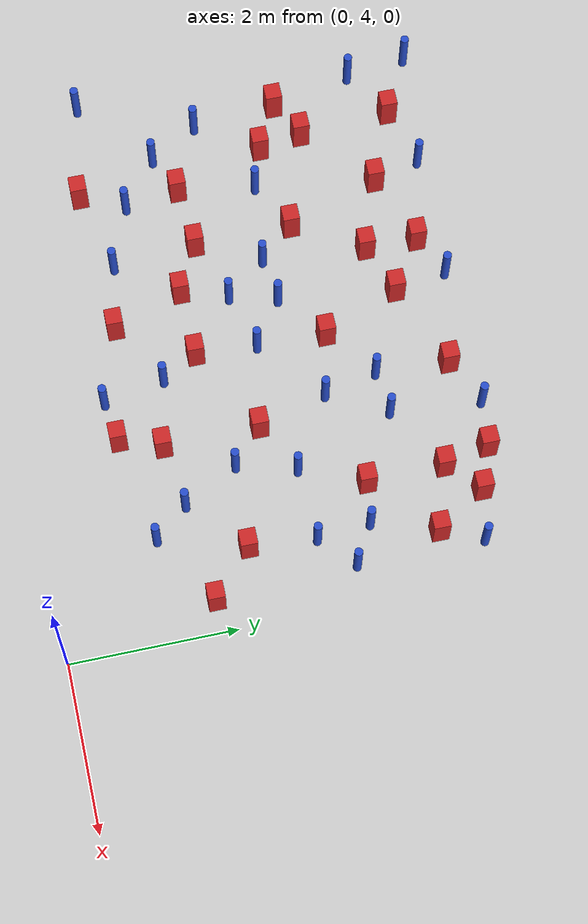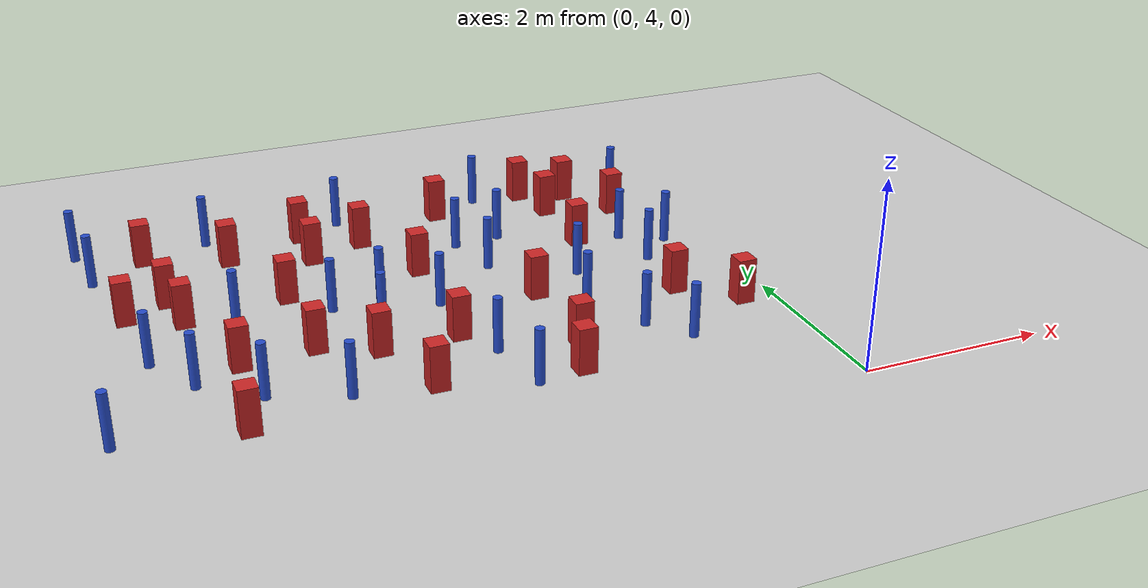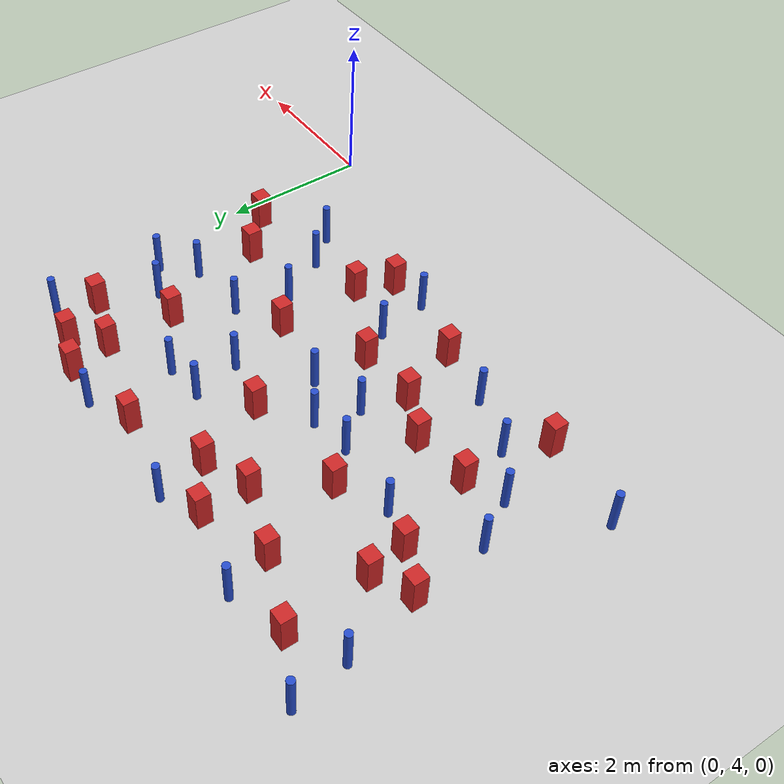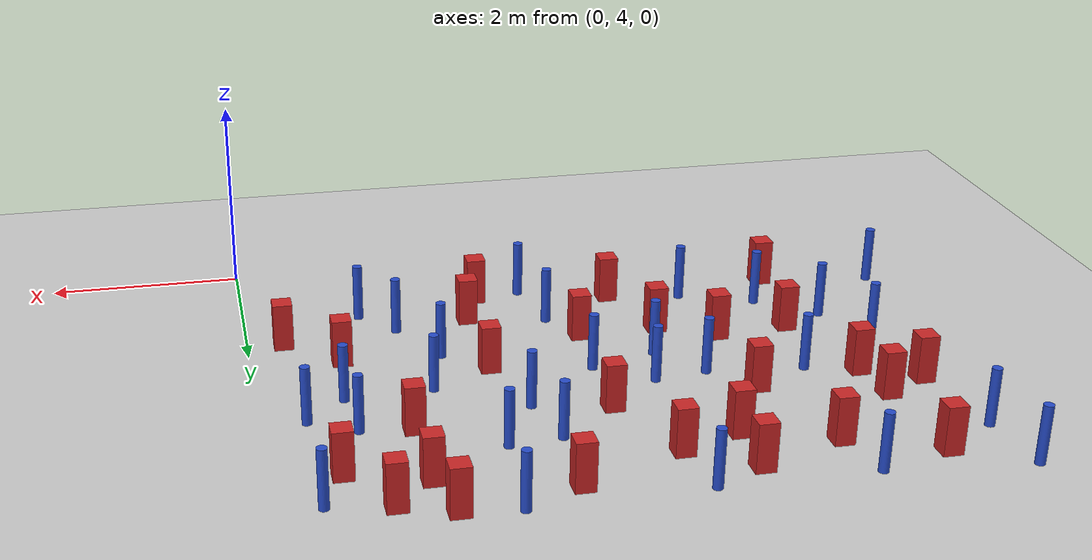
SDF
<sdf version="1.6">
 <world name="default">
  <model name="ground_plane">
   <static>1</static>
   <link name="link">
    <collision name="collision">
     <geometry><plane><normal>0 0 1</normal><size>100 100</size></plane></geometry>
     <surface><friction><ode><mu>100</mu><mu2>50</mu2></ode></friction></surface>
    </collision>
    <visual name="visual">
     <cast_shadows>0</cast_shadows>
     <geometry><plane><normal>0 0 1</normal><size>100 100</size></plane></geometry>
     <material>
      <ambient>1.0 1.0 1.0 1.0</ambient>
      <diffuse>0.8 0.8 0.8 1.0</diffuse>
      <specular>0.01 0.01 0.01 1.000000</specular>
     </material>
    </visual>
   </link>
  </model>
  <model name="pole_obstacle0">
   <static>true</static>
   <pose>-2.74047596833 8.22016565613 7.38925637345e-09 -8.47170692793e-08 1.24976764408e-08 -1.74513093041e-07</pose>
   <link name="link">
    <pose>0 0 0.3 0 -0 0</pose>
    <inertial>
     <mass>1</mass>
     <inertia><ixx>0.145833</ixx><ixy>0</ixy><ixz>0</ixz><iyy>0.145833</iyy><iyz>0</iyz><izz>0.125</izz></inertia>
    </inertial>
    <collision name="collision">
     <geometry><cylinder><radius>0.05</radius><length>.6</length></cylinder></geometry>
    </collision>
    <visual name="visual">
     <geometry><cylinder><radius>0.05</radius><length>.6</length></cylinder></geometry>
     <material>
      <script><name>Gazebo/Blue</name><uri>file://media/materials/scripts/gazebo.material</uri></script>
     </material>
    </visual>
   </link>
  </model>
  <model name="square_post_obstacle8">
   <static>true</static>
   <pose>-6.50042134347 7.75709684066 1.91545236811e-07 -7.35059704564e-06 1.12565212e-07 2.39332434364e-05</pose>
   <link name="link">
    <pose>0 0 0.25 0 -0 0</pose>
    <inertial>
     <mass>100</mass>
     <inertia>
      <ixx>0.166667</ixx>
      <ixy>0</ixy>
      <ixz>0</ixz>
      <iyy>0.166667</iyy>
      <iyz>0</iyz>
      <izz>0.166667</izz>
     </inertia>
    </inertial>
    <collision name="collision"><geometry><box><size>.2 .2 .5</size></box></geometry></collision>
    <visual name="visual">
     <geometry><box><size>.2 .2 .5</size></box></geometry>
     <material>
      <script><name>Gazebo/Red</name><uri>file://media/materials/scripts/gazebo.material</uri></script>
     </material>
    </visual>
   </link>
  </model>
  <model name="pole_obstacle15">
   <static>true</static>
   <pose>-3.9103735772 7.27797868932 7.38925637345e-09 -8.47170692798e-08 1.24976765033e-08 -1.74513093019e-07</pose>
   <link name="link">
    <pose>0 0 0.3 0 -0 0</pose>
    <inertial>
     <mass>1</mass>
     <inertia><ixx>0.145833</ixx><ixy>0</ixy><ixz>0</ixz><iyy>0.145833</iyy><iyz>0</iyz><izz>0.125</izz></inertia>
    </inertial>
    <collision name="collision">
     <geometry><cylinder><radius>0.05</radius><length>.6</length></cylinder></geometry>
    </collision>
    <visual name="visual">
     <geometry><cylinder><radius>0.05</radius><length>.6</length></cylinder></geometry>
     <material>
      <script><name>Gazebo/Blue</name><uri>file://media/materials/scripts/gazebo.material</uri></script>
     </material>
    </visual>
   </link>
  </model>
  <model name="square_post_obstacle26">
   <static>true</static>
   <pose>-2.52311962346 5.06204377096 1.91545236811e-07 -7.35059704564e-06 1.12565212e-07 2.39332434364e-05</pose>
   <link name="link">
    <pose>0 0 0.25 0 -0 0</pose>
    <inertial>
     <mass>100</mass>
     <inertia>
      <ixx>0.166667</ixx>
      <ixy>0</ixy>
      <ixz>0</ixz>
      <iyy>0.166667</iyy>
      <iyz>0</iyz>
      <izz>0.166667</izz>
     </inertia>
    </inertial>
    <collision name="collision"><geometry><box><size>.2 .2 .5</size></box></geometry></collision>
    <visual name="visual">
     <geometry><box><size>.2 .2 .5</size></box></geometry>
     <material>
      <script><name>Gazebo/Red</name><uri>file://media/materials/scripts/gazebo.material</uri></script>
     </material>
    </visual>
   </link>
  </model>
  <model name="square_post_obstacle32">
   <static>true</static>
   <pose>-5.23135822842 8.76338103771 1.91545236811e-07 -7.35059704564e-06 1.12565212e-07 2.39332434364e-05</pose>
   <link name="link">
    <pose>0 0 0.25 0 -0 0</pose>
    <inertial>
     <mass>100</mass>
     <inertia>
      <ixx>0.166667</ixx>
      <ixy>0</ixy>
      <ixz>0</ixz>
      <iyy>0.166667</iyy>
      <iyz>0</iyz>
      <izz>0.166667</izz>
     </inertia>
    </inertial>
    <collision name="collision"><geometry><box><size>.2 .2 .5</size></box></geometry></collision>
    <visual name="visual">
     <geometry><box><size>.2 .2 .5</size></box></geometry>
     <material>
      <script><name>Gazebo/Red</name><uri>file://media/materials/scripts/gazebo.material</uri></script>
     </material>
    </visual>
   </link>
  </model>
  <model name="pole_obstacle29">
   <static>true</static>
   <pose>-4.73370630405 5.41766139829 7.38925637345e-09 -8.47170692796e-08 1.24976764786e-08 -1.74513093032e-07</pose>
   <link name="link">
    <pose>0 0 0.3 0 -0 0</pose>
    <inertial>
     <mass>1</mass>
     <inertia><ixx>0.145833</ixx><ixy>0</ixy><ixz>0</ixz><iyy>0.145833</iyy><iyz>0</iyz><izz>0.125</izz></inertia>
    </inertial>
    <collision name="collision">
     <geometry><cylinder><radius>0.05</radius><length>.6</length></cylinder></geometry>
    </collision>
    <visual name="visual">
     <geometry><cylinder><radius>0.05</radius><length>.6</length></cylinder></geometry>
     <material>
      <script><name>Gazebo/Blue</name><uri>file://media/materials/scripts/gazebo.material</uri></script>
     </material>
    </visual>
   </link>
  </model>
  <model name="pole_obstacle31">
   <static>true</static>
   <pose>-0.447804162188 7.48627772428 7.38925637345e-09 -8.471706928e-08 1.24976765079e-08 -1.74513093015e-07</pose>
   <link name="link">
    <pose>0 0 0.3 0 -0 0</pose>
    <inertial>
     <mass>1</mass>
     <inertia><ixx>0.145833</ixx><ixy>0</ixy><ixz>0</ixz><iyy>0.145833</iyy><iyz>0</iyz><izz>0.125</izz></inertia>
    </inertial>
    <collision name="collision">
     <geometry><cylinder><radius>0.05</radius><length>.6</length></cylinder></geometry>
    </collision>
    <visual name="visual">
     <geometry><cylinder><radius>0.05</radius><length>.6</length></cylinder></geometry>
     <material>
      <script><name>Gazebo/Blue</name><uri>file://media/materials/scripts/gazebo.material</uri></script>
     </material>
    </visual>
   </link>
  </model>
  <model name="pole_obstacle35">
   <static>true</static>
   <pose>-6.41034922686 6.73731167254 7.38925637345e-09 -8.47170692796e-08 1.24976764786e-08 -1.74513093032e-07</pose>
   <link name="link">
    <pose>0 0 0.3 0 -0 0</pose>
    <inertial>
     <mass>1</mass>
     <inertia><ixx>0.145833</ixx><ixy>0</ixy><ixz>0</ixz><iyy>0.145833</iyy><iyz>0</iyz><izz>0.125</izz></inertia>
    </inertial>
    <collision name="collision">
     <geometry><cylinder><radius>0.05</radius><length>.6</length></cylinder></geometry>
    </collision>
    <visual name="visual">
     <geometry><cylinder><radius>0.05</radius><length>.6</length></cylinder></geometry>
     <material>
      <script><name>Gazebo/Blue</name><uri>file://media/materials/scripts/gazebo.material</uri></script>
     </material>
    </visual>
   </link>
  </model>
  <model name="pole_obstacle41">
   <static>true</static>
   <pose>-6.71391786176 8.75395670122 7.38925637345e-09 -8.471706928e-08 1.24976765081e-08 -1.74513093015e-07</pose>
   <link name="link">
    <pose>0 0 0.3 0 -0 0</pose>
    <inertial>
     <mass>1</mass>
     <inertia><ixx>0.145833</ixx><ixy>0</ixy><ixz>0</ixz><iyy>0.145833</iyy><iyz>0</iyz><izz>0.125</izz></inertia>
    </inertial>
    <collision name="collision">
     <geometry><cylinder><radius>0.05</radius><length>.6</length></cylinder></geometry>
    </collision>
    <visual name="visual">
     <geometry><cylinder><radius>0.05</radius><length>.6</length></cylinder></geometry>
     <material>
      <script><name>Gazebo/Blue</name><uri>file://media/materials/scripts/gazebo.material</uri></script>
     </material>
    </visual>
   </link>
  </model>
  <model name="pole_obstacle48">
   <static>true</static>
   <pose>-3.1614789813 5.72908168423 7.38925637345e-09 -8.47170692798e-08 1.24976765033e-08 -1.74513093019e-07</pose>
   <link name="link">
    <pose>0 0 0.3 0 -0 0</pose>
    <inertial>
     <mass>1</mass>
     <inertia><ixx>0.145833</ixx><ixy>0</ixy><ixz>0</ixz><iyy>0.145833</iyy><iyz>0</iyz><izz>0.125</izz></inertia>
    </inertial>
    <collision name="collision">
     <geometry><cylinder><radius>0.05</radius><length>.6</length></cylinder></geometry>
    </collision>
    <visual name="visual">
     <geometry><cylinder><radius>0.05</radius><length>.6</length></cylinder></geometry>
     <material>
      <script><name>Gazebo/Blue</name><uri>file://media/materials/scripts/gazebo.material</uri></script>
     </material>
    </visual>
   </link>
  </model>
  <model name="pole_obstacle49">
   <static>true</static>
   <pose>-1.56277596051 5.68180230896 7.38925637345e-09 -8.47170692799e-08 1.24976765033e-08 -1.74513093018e-07</pose>
   <link name="link">
    <pose>0 0 0.3 0 -0 0</pose>
    <inertial>
     <mass>1</mass>
     <inertia><ixx>0.145833</ixx><ixy>0</ixy><ixz>0</ixz><iyy>0.145833</iyy><iyz>0</iyz><izz>0.125</izz></inertia>
    </inertial>
    <collision name="collision">
     <geometry><cylinder><radius>0.05</radius><length>.6</length></cylinder></geometry>
    </collision>
    <visual name="visual">
     <geometry><cylinder><radius>0.05</radius><length>.6</length></cylinder></geometry>
     <material>
      <script><name>Gazebo/Blue</name><uri>file://media/materials/scripts/gazebo.material</uri></script>
     </material>
    </visual>
   </link>
  </model>
  <model name="square_post_obstacle56">
   <static>true</static>
   <pose>-0.372940608553 5.80518816378 1.91545236811e-07 -7.35059704564e-06 1.12565212e-07 2.39332434364e-05</pose>
   <link name="link">
    <pose>0 0 0.25 0 -0 0</pose>
    <inertial>
     <mass>100</mass>
     <inertia>
      <ixx>0.166667</ixx>
      <ixy>0</ixy>
      <ixz>0</ixz>
      <iyy>0.166667</iyy>
      <iyz>0</iyz>
      <izz>0.166667</izz>
     </inertia>
    </inertial>
    <collision name="collision"><geometry><box><size>.2 .2 .5</size></box></geometry></collision>
    <visual name="visual">
     <geometry><box><size>.2 .2 .5</size></box></geometry>
     <material>
      <script><name>Gazebo/Red</name><uri>file://media/materials/scripts/gazebo.material</uri></script>
     </material>
    </visual>
   </link>
  </model>
  <model name="square_post_obstacle57">
   <static>true</static>
   <pose>-2.69815519711 9.10023518948 1.91545236811e-07 -7.35059704564e-06 1.12565212e-07 2.39332434364e-05</pose>
   <link name="link">
    <pose>0 0 0.25 0 -0 0</pose>
    <inertial>
     <mass>100</mass>
     <inertia>
      <ixx>0.166667</ixx>
      <ixy>0</ixy>
      <ixz>0</ixz>
      <iyy>0.166667</iyy>
      <iyz>0</iyz>
      <izz>0.166667</izz>
     </inertia>
    </inertial>
    <collision name="collision"><geometry><box><size>.2 .2 .5</size></box></geometry></collision>
    <visual name="visual">
     <geometry><box><size>.2 .2 .5</size></box></geometry>
     <material>
      <script><name>Gazebo/Red</name><uri>file://media/materials/scripts/gazebo.material</uri></script>
     </material>
    </visual>
   </link>
  </model>
  <model name="square_post_obstacle59">
   <static>true</static>
   <pose>-0.918948018108 6.29497373474 1.91545236811e-07 -7.35059704564e-06 1.12565212e-07 2.39332434364e-05</pose>
   <link name="link">
    <pose>0 0 0.25 0 -0 0</pose>
    <inertial>
     <mass>100</mass>
     <inertia>
      <ixx>0.166667</ixx>
      <ixy>0</ixy>
      <ixz>0</ixz>
      <iyy>0.166667</iyy>
      <iyz>0</iyz>
      <izz>0.166667</izz>
     </inertia>
    </inertial>
    <collision name="collision"><geometry><box><size>.2 .2 .5</size></box></geometry></collision>
    <visual name="visual">
     <geometry><box><size>.2 .2 .5</size></box></geometry>
     <material>
      <script><name>Gazebo/Red</name><uri>file://media/materials/scripts/gazebo.material</uri></script>
     </material>
    </visual>
   </link>
  </model>
  <model name="pole_obstacle59">
   <static>true</static>
   <pose>-6.95492985248 5.35925655726 7.38925637345e-09 -8.47170692796e-08 1.24976764786e-08 -1.74513093032e-07</pose>
   <link name="link">
    <pose>0 0 0.3 0 -0 0</pose>
    <inertial>
     <mass>1</mass>
     <inertia><ixx>0.145833</ixx><ixy>0</ixy><ixz>0</ixz><iyy>0.145833</iyy><iyz>0</iyz><izz>0.125</izz></inertia>
    </inertial>
    <collision name="collision">
     <geometry><cylinder><radius>0.05</radius><length>.6</length></cylinder></geometry>
    </collision>
    <visual name="visual">
     <geometry><cylinder><radius>0.05</radius><length>.6</length></cylinder></geometry>
     <material>
      <script><name>Gazebo/Blue</name><uri>file://media/materials/scripts/gazebo.material</uri></script>
     </material>
    </visual>
   </link>
  </model>
  <model name="pole_obstacle72">
   <static>true</static>
   <pose>-2.21505190173 8.27574011707 7.38925637345e-09 -8.47170692793e-08 1.24976764408e-08 -1.74513093041e-07</pose>
   <link name="link">
    <pose>0 0 0.3 0 -0 0</pose>
    <inertial>
     <mass>1</mass>
     <inertia><ixx>0.145833</ixx><ixy>0</ixy><ixz>0</ixz><iyy>0.145833</iyy><iyz>0</iyz><izz>0.125</izz></inertia>
    </inertial>
    <collision name="collision">
     <geometry><cylinder><radius>0.05</radius><length>.6</length></cylinder></geometry>
    </collision>
    <visual name="visual">
     <geometry><cylinder><radius>0.05</radius><length>.6</length></cylinder></geometry>
     <material>
      <script><name>Gazebo/Blue</name><uri>file://media/materials/scripts/gazebo.material</uri></script>
     </material>
    </visual>
   </link>
  </model>
  <model name="pole_obstacle73">
   <static>true</static>
   <pose>-0.845746992816 7.10002834338 7.38925637345e-09 -8.471706928e-08 1.24976765086e-08 -1.74513093015e-07</pose>
   <link name="link">
    <pose>0 0 0.3 0 -0 0</pose>
    <inertial>
     <mass>1</mass>
     <inertia><ixx>0.145833</ixx><ixy>0</ixy><ixz>0</ixz><iyy>0.145833</iyy><iyz>0</iyz><izz>0.125</izz></inertia>
    </inertial>
    <collision name="collision">
     <geometry><cylinder><radius>0.05</radius><length>.6</length></cylinder></geometry>
    </collision>
    <visual name="visual">
     <geometry><cylinder><radius>0.05</radius><length>.6</length></cylinder></geometry>
     <material>
      <script><name>Gazebo/Blue</name><uri>file://media/materials/scripts/gazebo.material</uri></script>
     </material>
    </visual>
   </link>
  </model>
  <model name="pole_obstacle76">
   <static>true</static>
   <pose>-4.45694245112 7.20230404313 7.38925637345e-09 -8.47170692796e-08 1.24976764786e-08 -1.74513093032e-07</pose>
   <link name="link">
    <pose>0 0 0.3 0 -0 0</pose>
    <inertial>
     <mass>1</mass>
     <inertia><ixx>0.145833</ixx><ixy>0</ixy><ixz>0</ixz><iyy>0.145833</iyy><iyz>0</iyz><izz>0.125</izz></inertia>
    </inertial>
    <collision name="collision">
     <geometry><cylinder><radius>0.05</radius><length>.6</length></cylinder></geometry>
    </collision>
    <visual name="visual">
     <geometry><cylinder><radius>0.05</radius><length>.6</length></cylinder></geometry>
     <material>
      <script><name>Gazebo/Blue</name><uri>file://media/materials/scripts/gazebo.material</uri></script>
     </material>
    </visual>
   </link>
  </model>
  <model name="square_post_obstacle83">
   <static>true</static>
   <pose>-1.41263466587 7.8131366715 1.91545236811e-07 -7.35059704564e-06 1.12565212e-07 2.39332434364e-05</pose>
   <link name="link">
    <pose>0 0 0.25 0 -0 0</pose>
    <inertial>
     <mass>100</mass>
     <inertia>
      <ixx>0.166667</ixx>
      <ixy>0</ixy>
      <ixz>0</ixz>
      <iyy>0.166667</iyy>
      <iyz>0</iyz>
      <izz>0.166667</izz>
     </inertia>
    </inertial>
    <collision name="collision"><geometry><box><size>.2 .2 .5</size></box></geometry></collision>
    <visual name="visual">
     <geometry><box><size>.2 .2 .5</size></box></geometry>
     <material>
      <script><name>Gazebo/Red</name><uri>file://media/materials/scripts/gazebo.material</uri></script>
     </material>
    </visual>
   </link>
  </model>
  <model name="pole_obstacle96">
   <static>true</static>
   <pose>-6.81792147704 9.49633468451 7.38925637345e-09 -8.471706928e-08 1.24976765081e-08 -1.74513093015e-07</pose>
   <link name="link">
    <pose>0 0 0.3 0 -0 0</pose>
    <inertial>
     <mass>1</mass>
     <inertia><ixx>0.145833</ixx><ixy>0</ixy><ixz>0</ixz><iyy>0.145833</iyy><iyz>0</iyz><izz>0.125</izz></inertia>
    </inertial>
    <collision name="collision">
     <geometry><cylinder><radius>0.05</radius><length>.6</length></cylinder></geometry>
    </collision>
    <visual name="visual">
     <geometry><cylinder><radius>0.05</radius><length>.6</length></cylinder></geometry>
     <material>
      <script><name>Gazebo/Blue</name><uri>file://media/materials/scripts/gazebo.material</uri></script>
     </material>
    </visual>
   </link>
  </model>
  <model name="square_post_obstacle90">
   <static>true</static>
   <pose>-3.3439964749 7.74330198725 1.91545236811e-07 -7.35059704564e-06 1.12565212e-07 2.39332434364e-05</pose>
   <link name="link">
    <pose>0 0 0.25 0 -0 0</pose>
    <inertial>
     <mass>100</mass>
     <inertia>
      <ixx>0.166667</ixx>
      <ixy>0</ixy>
      <ixz>0</ixz>
      <iyy>0.166667</iyy>
      <iyz>0</iyz>
      <izz>0.166667</izz>
     </inertia>
    </inertial>
    <collision name="collision"><geometry><box><size>.2 .2 .5</size></box></geometry></collision>
    <visual name="visual">
     <geometry><box><size>.2 .2 .5</size></box></geometry>
     <material>
      <script><name>Gazebo/Red</name><uri>file://media/materials/scripts/gazebo.material</uri></script>
     </material>
    </visual>
   </link>
  </model>
  <model name="pole_obstacle103">
   <static>true</static>
   <pose>-0.90763587211 7.74226885329 7.38925637345e-09 -8.471706928e-08 1.24976765086e-08 -1.74513093015e-07</pose>
   <link name="link">
    <pose>0 0 0.3 0 -0 0</pose>
    <inertial>
     <mass>1</mass>
     <inertia><ixx>0.145833</ixx><ixy>0</ixy><ixz>0</ixz><iyy>0.145833</iyy><iyz>0</iyz><izz>0.125</izz></inertia>
    </inertial>
    <collision name="collision">
     <geometry><cylinder><radius>0.05</radius><length>.6</length></cylinder></geometry>
    </collision>
    <visual name="visual">
     <geometry><cylinder><radius>0.05</radius><length>.6</length></cylinder></geometry>
     <material>
      <script><name>Gazebo/Blue</name><uri>file://media/materials/scripts/gazebo.material</uri></script>
     </material>
    </visual>
   </link>
  </model>
  <model name="pole_obstacle104">
   <static>true</static>
   <pose>-1.21713917066 5.27326865557 7.38925637345e-09 -8.47170692799e-08 1.24976765033e-08 -1.74513093018e-07</pose>
   <link name="link">
    <pose>0 0 0.3 0 -0 0</pose>
    <inertial>
     <mass>1</mass>
     <inertia><ixx>0.145833</ixx><ixy>0</ixy><ixz>0</ixz><iyy>0.145833</iyy><iyz>0</iyz><izz>0.125</izz></inertia>
    </inertial>
    <collision name="collision">
     <geometry><cylinder><radius>0.05</radius><length>.6</length></cylinder></geometry>
    </collision>
    <visual name="visual">
     <geometry><cylinder><radius>0.05</radius><length>.6</length></cylinder></geometry>
     <material>
      <script><name>Gazebo/Blue</name><uri>file://media/materials/scripts/gazebo.material</uri></script>
     </material>
    </visual>
   </link>
  </model>
  <model name="square_post_obstacle94">
   <static>true</static>
   <pose>-1.56279489217 9.29971634583 1.91545236811e-07 -7.35059704564e-06 1.12565212e-07 2.39332434364e-05</pose>
   <link name="link">
    <pose>0 0 0.25 0 -0 0</pose>
    <inertial>
     <mass>100</mass>
     <inertia>
      <ixx>0.166667</ixx>
      <ixy>0</ixy>
      <ixz>0</ixz>
      <iyy>0.166667</iyy>
      <iyz>0</iyz>
      <izz>0.166667</izz>
     </inertia>
    </inertial>
    <collision name="collision"><geometry><box><size>.2 .2 .5</size></box></geometry></collision>
    <visual name="visual">
     <geometry><box><size>.2 .2 .5</size></box></geometry>
     <material>
      <script><name>Gazebo/Red</name><uri>file://media/materials/scripts/gazebo.material</uri></script>
     </material>
    </visual>
   </link>
  </model>
  <model name="square_post_obstacle97">
   <static>true</static>
   <pose>-3.41477374361 6.16441515888 1.91545236811e-07 -7.35059704564e-06 1.12565212e-07 2.39332434364e-05</pose>
   <link name="link">
    <pose>0 0 0.25 0 -0 0</pose>
    <inertial>
     <mass>100</mass>
     <inertia>
      <ixx>0.166667</ixx>
      <ixy>0</ixy>
      <ixz>0</ixz>
      <iyy>0.166667</iyy>
      <iyz>0</iyz>
      <izz>0.166667</izz>
     </inertia>
    </inertial>
    <collision name="collision"><geometry><box><size>.2 .2 .5</size></box></geometry></collision>
    <visual name="visual">
     <geometry><box><size>.2 .2 .5</size></box></geometry>
     <material>
      <script><name>Gazebo/Red</name><uri>file://media/materials/scripts/gazebo.material</uri></script>
     </material>
    </visual>
   </link>
  </model>
  <model name="square_post_obstacle103">
   <static>true</static>
   <pose>-1.42729048579 8.74738170099 1.91545236811e-07 -7.35059704564e-06 1.12565212e-07 2.39332434364e-05</pose>
   <link name="link">
    <pose>0 0 0.25 0 -0 0</pose>
    <inertial>
     <mass>100</mass>
     <inertia>
      <ixx>0.166667</ixx>
      <ixy>0</ixy>
      <ixz>0</ixz>
      <iyy>0.166667</iyy>
      <iyz>0</iyz>
      <izz>0.166667</izz>
     </inertia>
    </inertial>
    <collision name="collision"><geometry><box><size>.2 .2 .5</size></box></geometry></collision>
    <visual name="visual">
     <geometry><box><size>.2 .2 .5</size></box></geometry>
     <material>
      <script><name>Gazebo/Red</name><uri>file://media/materials/scripts/gazebo.material</uri></script>
     </material>
    </visual>
   </link>
  </model>
  <model name="square_post_obstacle106">
   <static>true</static>
   <pose>-4.24651521928 6.14296597648 1.91545236811e-07 -7.35059704564e-06 1.12565212e-07 2.39332434364e-05</pose>
   <link name="link">
    <pose>0 0 0.25 0 -0 0</pose>
    <inertial>
     <mass>100</mass>
     <inertia>
      <ixx>0.166667</ixx>
      <ixy>0</ixy>
      <ixz>0</ixz>
      <iyy>0.166667</iyy>
      <iyz>0</iyz>
      <izz>0.166667</izz>
     </inertia>
    </inertial>
    <collision name="collision"><geometry><box><size>.2 .2 .5</size></box></geometry></collision>
    <visual name="visual">
     <geometry><box><size>.2 .2 .5</size></box></geometry>
     <material>
      <script><name>Gazebo/Red</name><uri>file://media/materials/scripts/gazebo.material</uri></script>
     </material>
    </visual>
   </link>
  </model>
  <model name="square_post_obstacle108">
   <static>true</static>
   <pose>-4.35006842996 9.08717272169 1.91545236811e-07 -7.35059704564e-06 1.12565212e-07 2.39332434364e-05</pose>
   <link name="link">
    <pose>0 0 0.25 0 -0 0</pose>
    <inertial>
     <mass>100</mass>
     <inertia>
      <ixx>0.166667</ixx>
      <ixy>0</ixy>
      <ixz>0</ixz>
      <iyy>0.166667</iyy>
      <iyz>0</iyz>
      <izz>0.166667</izz>
     </inertia>
    </inertial>
    <collision name="collision"><geometry><box><size>.2 .2 .5</size></box></geometry></collision>
    <visual name="visual">
     <geometry><box><size>.2 .2 .5</size></box></geometry>
     <material>
      <script><name>Gazebo/Red</name><uri>file://media/materials/scripts/gazebo.material</uri></script>
     </material>
    </visual>
   </link>
  </model>
  <model name="square_post_obstacle109">
   <static>true</static>
   <pose>-4.35754577168 8.45608632136 1.91545236811e-07 -7.35059704564e-06 1.12565212e-07 2.39332434364e-05</pose>
   <link name="link">
    <pose>0 0 0.25 0 -0 0</pose>
    <inertial>
     <mass>100</mass>
     <inertia>
      <ixx>0.166667</ixx>
      <ixy>0</ixy>
      <ixz>0</ixz>
      <iyy>0.166667</iyy>
      <iyz>0</iyz>
      <izz>0.166667</izz>
     </inertia>
    </inertial>
    <collision name="collision"><geometry><box><size>.2 .2 .5</size></box></geometry></collision>
    <visual name="visual">
     <geometry><box><size>.2 .2 .5</size></box></geometry>
     <material>
      <script><name>Gazebo/Red</name><uri>file://media/materials/scripts/gazebo.material</uri></script>
     </material>
    </visual>
   </link>
  </model>
  <model name="square_post_obstacle110">
   <static>true</static>
   <pose>-4.83790942512 7.62581526449 1.91545236811e-07 -7.35059704564e-06 1.12565212e-07 2.39332434364e-05</pose>
   <link name="link">
    <pose>0 0 0.25 0 -0 0</pose>
    <inertial>
     <mass>100</mass>
     <inertia>
      <ixx>0.166667</ixx>
      <ixy>0</ixy>
      <ixz>0</ixz>
      <iyy>0.166667</iyy>
      <iyz>0</iyz>
      <izz>0.166667</izz>
     </inertia>
    </inertial>
    <collision name="collision"><geometry><box><size>.2 .2 .5</size></box></geometry></collision>
    <visual name="visual">
     <geometry><box><size>.2 .2 .5</size></box></geometry>
     <material>
      <script><name>Gazebo/Red</name><uri>file://media/materials/scripts/gazebo.material</uri></script>
     </material>
    </visual>
   </link>
  </model>
  <model name="square_post_obstacle115">
   <static>true</static>
   <pose>-4.82530575847 6.43607412036 1.91545236811e-07 -7.35059704564e-06 1.12565212e-07 2.39332434364e-05</pose>
   <link name="link">
    <pose>0 0 0.25 0 -0 0</pose>
    <inertial>
     <mass>100</mass>
     <inertia>
      <ixx>0.166667</ixx>
      <ixy>0</ixy>
      <ixz>0</ixz>
      <iyy>0.166667</iyy>
      <iyz>0</iyz>
      <izz>0.166667</izz>
     </inertia>
    </inertial>
    <collision name="collision"><geometry><box><size>.2 .2 .5</size></box></geometry></collision>
    <visual name="visual">
     <geometry><box><size>.2 .2 .5</size></box></geometry>
     <material>
      <script><name>Gazebo/Red</name><uri>file://media/materials/scripts/gazebo.material</uri></script>
     </material>
    </visual>
   </link>
  </model>
  <model name="pole_obstacle135">
   <static>true</static>
   <pose>-1.72909902297 7.05643582531 7.38925637345e-09 -8.47170692799e-08 1.24976765033e-08 -1.74513093018e-07</pose>
   <link name="link">
    <pose>0 0 0.3 0 -0 0</pose>
    <inertial>
     <mass>1</mass>
     <inertia><ixx>0.145833</ixx><ixy>0</ixy><ixz>0</ixz><iyy>0.145833</iyy><iyz>0</iyz><izz>0.125</izz></inertia>
    </inertial>
    <collision name="collision">
     <geometry><cylinder><radius>0.05</radius><length>.6</length></cylinder></geometry>
    </collision>
    <visual name="visual">
     <geometry><cylinder><radius>0.05</radius><length>.6</length></cylinder></geometry>
     <material>
      <script><name>Gazebo/Blue</name><uri>file://media/materials/scripts/gazebo.material</uri></script>
     </material>
    </visual>
   </link>
  </model>
  <model name="square_post_obstacle128">
   <static>true</static>
   <pose>-2.34964180566 6.72409814215 1.91545236811e-07 -7.35059704564e-06 1.12565212e-07 2.39332434364e-05</pose>
   <link name="link">
    <pose>0 0 0.25 0 -0 0</pose>
    <inertial>
     <mass>100</mass>
     <inertia>
      <ixx>0.166667</ixx>
      <ixy>0</ixy>
      <ixz>0</ixz>
      <iyy>0.166667</iyy>
      <iyz>0</iyz>
      <izz>0.166667</izz>
     </inertia>
    </inertial>
    <collision name="collision"><geometry><box><size>.2 .2 .5</size></box></geometry></collision>
    <visual name="visual">
     <geometry><box><size>.2 .2 .5</size></box></geometry>
     <material>
      <script><name>Gazebo/Red</name><uri>file://media/materials/scripts/gazebo.material</uri></script>
     </material>
    </visual>
   </link>
  </model>
  <model name="square_post_obstacle131">
   <static>true</static>
   <pose>-5.59545844674 6.36923777839 1.91545236811e-07 -7.35059704564e-06 1.12565212e-07 2.39332434364e-05</pose>
   <link name="link">
    <pose>0 0 0.25 0 -0 0</pose>
    <inertial>
     <mass>100</mass>
     <inertia>
      <ixx>0.166667</ixx>
      <ixy>0</ixy>
      <ixz>0</ixz>
      <iyy>0.166667</iyy>
      <iyz>0</iyz>
      <izz>0.166667</izz>
     </inertia>
    </inertial>
    <collision name="collision"><geometry><box><size>.2 .2 .5</size></box></geometry></collision>
    <visual name="visual">
     <geometry><box><size>.2 .2 .5</size></box></geometry>
     <material>
      <script><name>Gazebo/Red</name><uri>file://media/materials/scripts/gazebo.material</uri></script>
     </material>
    </visual>
   </link>
  </model>
  <model name="square_post_obstacle140">
   <static>true</static>
   <pose>-6.1194561871 9.12766016651 1.91545236811e-07 -7.35059704564e-06 1.12565212e-07 2.39332434364e-05</pose>
   <link name="link">
    <pose>0 0 0.25 0 -0 0</pose>
    <inertial>
     <mass>100</mass>
     <inertia>
      <ixx>0.166667</ixx>
      <ixy>0</ixy>
      <ixz>0</ixz>
      <iyy>0.166667</iyy>
      <iyz>0</iyz>
      <izz>0.166667</izz>
     </inertia>
    </inertial>
    <collision name="collision"><geometry><box><size>.2 .2 .5</size></box></geometry></collision>
    <visual name="visual">
     <geometry><box><size>.2 .2 .5</size></box></geometry>
     <material>
      <script><name>Gazebo/Red</name><uri>file://media/materials/scripts/gazebo.material</uri></script>
     </material>
    </visual>
   </link>
  </model>
  <model name="pole_obstacle152">
   <static>true</static>
   <pose>-2.58501780812 7.57128362582 7.38925637345e-09 -8.47170692798e-08 1.24976765033e-08 -1.74513093019e-07</pose>
   <link name="link">
    <pose>0 0 0.3 0 -0 0</pose>
    <inertial>
     <mass>1</mass>
     <inertia><ixx>0.145833</ixx><ixy>0</ixy><ixz>0</ixz><iyy>0.145833</iyy><iyz>0</iyz><izz>0.125</izz></inertia>
    </inertial>
    <collision name="collision">
     <geometry><cylinder><radius>0.05</radius><length>.6</length></cylinder></geometry>
    </collision>
    <visual name="visual">
     <geometry><cylinder><radius>0.05</radius><length>.6</length></cylinder></geometry>
     <material>
      <script><name>Gazebo/Blue</name><uri>file://media/materials/scripts/gazebo.material</uri></script>
     </material>
    </visual>
   </link>
  </model>
  <model name="pole_obstacle156">
   <static>true</static>
   <pose>-3.36556638618 6.90829761525 7.38925637345e-09 -8.47170692794e-08 1.24976764468e-08 -1.7451309304e-07</pose>
   <link name="link">
    <pose>0 0 0.3 0 -0 0</pose>
    <inertial>
     <mass>1</mass>
     <inertia><ixx>0.145833</ixx><ixy>0</ixy><ixz>0</ixz><iyy>0.145833</iyy><iyz>0</iyz><izz>0.125</izz></inertia>
    </inertial>
    <collision name="collision">
     <geometry><cylinder><radius>0.05</radius><length>.6</length></cylinder></geometry>
    </collision>
    <visual name="visual">
     <geometry><cylinder><radius>0.05</radius><length>.6</length></cylinder></geometry>
     <material>
      <script><name>Gazebo/Blue</name><uri>file://media/materials/scripts/gazebo.material</uri></script>
     </material>
    </visual>
   </link>
  </model>
  <model name="square_post_obstacle157">
   <static>true</static>
   <pose>-1.05092566276 9.11504800224 1.91545236811e-07 -7.35059704564e-06 1.12565212e-07 2.39332434364e-05</pose>
   <link name="link">
    <pose>0 0 0.25 0 -0 0</pose>
    <inertial>
     <mass>100</mass>
     <inertia>
      <ixx>0.166667</ixx>
      <ixy>0</ixy>
      <ixz>0</ixz>
      <iyy>0.166667</iyy>
      <iyz>0</iyz>
      <izz>0.166667</izz>
     </inertia>
    </inertial>
    <collision name="collision"><geometry><box><size>.2 .2 .5</size></box></geometry></collision>
    <visual name="visual">
     <geometry><box><size>.2 .2 .5</size></box></geometry>
     <material>
      <script><name>Gazebo/Red</name><uri>file://media/materials/scripts/gazebo.material</uri></script>
     </material>
    </visual>
   </link>
  </model>
  <model name="pole_obstacle164">
   <static>true</static>
   <pose>-2.12511254327 9.37037228174 7.38925637345e-09 -8.47170692793e-08 1.24976764408e-08 -1.74513093041e-07</pose>
   <link name="link">
    <pose>0 0 0.3 0 -0 0</pose>
    <inertial>
     <mass>1</mass>
     <inertia><ixx>0.145833</ixx><ixy>0</ixy><ixz>0</ixz><iyy>0.145833</iyy><iyz>0</iyz><izz>0.125</izz></inertia>
    </inertial>
    <collision name="collision">
     <geometry><cylinder><radius>0.05</radius><length>.6</length></cylinder></geometry>
    </collision>
    <visual name="visual">
     <geometry><cylinder><radius>0.05</radius><length>.6</length></cylinder></geometry>
     <material>
      <script><name>Gazebo/Blue</name><uri>file://media/materials/scripts/gazebo.material</uri></script>
     </material>
    </visual>
   </link>
  </model>
  <model name="pole_obstacle166">
   <static>true</static>
   <pose>-5.49588172566 5.70935067447 7.38925637345e-09 -8.47170692796e-08 1.24976764786e-08 -1.74513093032e-07</pose>
   <link name="link">
    <pose>0 0 0.3 0 -0 0</pose>
    <inertial>
     <mass>1</mass>
     <inertia><ixx>0.145833</ixx><ixy>0</ixy><ixz>0</ixz><iyy>0.145833</iyy><iyz>0</iyz><izz>0.125</izz></inertia>
    </inertial>
    <collision name="collision">
     <geometry><cylinder><radius>0.05</radius><length>.6</length></cylinder></geometry>
    </collision>
    <visual name="visual">
     <geometry><cylinder><radius>0.05</radius><length>.6</length></cylinder></geometry>
     <material>
      <script><name>Gazebo/Blue</name><uri>file://media/materials/scripts/gazebo.material</uri></script>
     </material>
    </visual>
   </link>
  </model>
  <model name="pole_obstacle171">
   <static>true</static>
   <pose>-3.01832333162 4.98778284185 7.38925637345e-09 -8.47170692794e-08 1.24976764468e-08 -1.7451309304e-07</pose>
   <link name="link">
    <pose>0 0 0.3 0 -0 0</pose>
    <inertial>
     <mass>1</mass>
     <inertia><ixx>0.145833</ixx><ixy>0</ixy><ixz>0</ixz><iyy>0.145833</iyy><iyz>0</iyz><izz>0.125</izz></inertia>
    </inertial>
    <collision name="collision">
     <geometry><cylinder><radius>0.05</radius><length>.6</length></cylinder></geometry>
    </collision>
    <visual name="visual">
     <geometry><cylinder><radius>0.05</radius><length>.6</length></cylinder></geometry>
     <material>
      <script><name>Gazebo/Blue</name><uri>file://media/materials/scripts/gazebo.material</uri></script>
     </material>
    </visual>
   </link>
  </model>
  <model name="pole_obstacle173">
   <static>true</static>
   <pose>-3.84961458935 9.33514064091 7.38925637345e-09 -8.47170692799e-08 1.24976765012e-08 -1.74513093021e-07</pose>
   <link name="link">
    <pose>0 0 0.3 0 -0 0</pose>
    <inertial>
     <mass>1</mass>
     <inertia><ixx>0.145833</ixx><ixy>0</ixy><ixz>0</ixz><iyy>0.145833</iyy><iyz>0</iyz><izz>0.125</izz></inertia>
    </inertial>
    <collision name="collision">
     <geometry><cylinder><radius>0.05</radius><length>.6</length></cylinder></geometry>
    </collision>
    <visual name="visual">
     <geometry><cylinder><radius>0.05</radius><length>.6</length></cylinder></geometry>
     <material>
      <script><name>Gazebo/Blue</name><uri>file://media/materials/scripts/gazebo.material</uri></script>
     </material>
    </visual>
   </link>
  </model>
  <model name="square_post_obstacle167">
   <static>true</static>
   <pose>-6.03935833346 8.00370408587 1.91545236811e-07 -7.35059704564e-06 1.12565212e-07 2.39332434364e-05</pose>
   <link name="link">
    <pose>0 0 0.25 0 -0 0</pose>
    <inertial>
     <mass>100</mass>
     <inertia>
      <ixx>0.166667</ixx>
      <ixy>0</ixy>
      <ixz>0</ixz>
      <iyy>0.166667</iyy>
      <iyz>0</iyz>
      <izz>0.166667</izz>
     </inertia>
    </inertial>
    <collision name="collision"><geometry><box><size>.2 .2 .5</size></box></geometry></collision>
    <visual name="visual">
     <geometry><box><size>.2 .2 .5</size></box></geometry>
     <material>
      <script><name>Gazebo/Red</name><uri>file://media/materials/scripts/gazebo.material</uri></script>
     </material>
    </visual>
   </link>
  </model>
  <model name="square_post_obstacle174">
   <static>true</static>
   <pose>-2.33774701059 5.56385844915 1.91545236811e-07 -7.35059704564e-06 1.12565212e-07 2.39332434364e-05</pose>
   <link name="link">
    <pose>0 0 0.25 0 -0 0</pose>
    <inertial>
     <mass>100</mass>
     <inertia>
      <ixx>0.166667</ixx>
      <ixy>0</ixy>
      <ixz>0</ixz>
      <iyy>0.166667</iyy>
      <iyz>0</iyz>
      <izz>0.166667</izz>
     </inertia>
    </inertial>
    <collision name="collision"><geometry><box><size>.2 .2 .5</size></box></geometry></collision>
    <visual name="visual">
     <geometry><box><size>.2 .2 .5</size></box></geometry>
     <material>
      <script><name>Gazebo/Red</name><uri>file://media/materials/scripts/gazebo.material</uri></script>
     </material>
    </visual>
   </link>
  </model>
  <model name="square_post_obstacle194">
   <static>true</static>
   <pose>-5.75258901372 5.17702051545 1.91545236811e-07 -7.35059704564e-06 1.12565212e-07 2.39332434364e-05</pose>
   <link name="link">
    <pose>0 0 0.25 0 -0 0</pose>
    <inertial>
     <mass>100</mass>
     <inertia>
      <ixx>0.166667</ixx>
      <ixy>0</ixy>
      <ixz>0</ixz>
      <iyy>0.166667</iyy>
      <iyz>0</iyz>
      <izz>0.166667</izz>
     </inertia>
    </inertial>
    <collision name="collision"><geometry><box><size>.2 .2 .5</size></box></geometry></collision>
    <visual name="visual">
     <geometry><box><size>.2 .2 .5</size></box></geometry>
     <material>
      <script><name>Gazebo/Red</name><uri>file://media/materials/scripts/gazebo.material</uri></script>
     </material>
    </visual>
   </link>
  </model>
  <model name="pole_obstacle195">
   <static>true</static>
   <pose>-6.06621058493 6.14869836965 7.38925637345e-09 -8.47170692796e-08 1.24976764786e-08 -1.74513093032e-07</pose>
   <link name="link">
    <pose>0 0 0.3 0 -0 0</pose>
    <inertial>
     <mass>1</mass>
     <inertia><ixx>0.145833</ixx><ixy>0</ixy><ixz>0</ixz><iyy>0.145833</iyy><iyz>0</iyz><izz>0.125</izz></inertia>
    </inertial>
    <collision name="collision">
     <geometry><cylinder><radius>0.05</radius><length>.6</length></cylinder></geometry>
    </collision>
    <visual name="visual">
     <geometry><cylinder><radius>0.05</radius><length>.6</length></cylinder></geometry>
     <material>
      <script><name>Gazebo/Blue</name><uri>file://media/materials/scripts/gazebo.material</uri></script>
     </material>
    </visual>
   </link>
  </model>
  <model name="pole_obstacle199">
   <static>true</static>
   <pose>-0.44162700279 9.00741442138 7.38925637345e-09 -8.47170692796e-08 1.24976764724e-08 -1.74513093036e-07</pose>
   <link name="link">
    <pose>0 0 0.3 0 -0 0</pose>
    <inertial>
     <mass>1</mass>
     <inertia><ixx>0.145833</ixx><ixy>0</ixy><ixz>0</ixz><iyy>0.145833</iyy><iyz>0</iyz><izz>0.125</izz></inertia>
    </inertial>
    <collision name="collision">
     <geometry><cylinder><radius>0.05</radius><length>.6</length></cylinder></geometry>
    </collision>
    <visual name="visual">
     <geometry><cylinder><radius>0.05</radius><length>.6</length></cylinder></geometry>
     <material>
      <script><name>Gazebo/Blue</name><uri>file://media/materials/scripts/gazebo.material</uri></script>
     </material>
    </visual>
   </link>
  </model>
  <model name="pole_obstacle205">
   <static>true</static>
   <pose>-4.05956389649 6.70594189008 7.38925637345e-09 -8.47170692796e-08 1.24976764786e-08 -1.74513093032e-07</pose>
   <link name="link">
    <pose>0 0 0.3 0 -0 0</pose>
    <inertial>
     <mass>1</mass>
     <inertia><ixx>0.145833</ixx><ixy>0</ixy><ixz>0</ixz><iyy>0.145833</iyy><iyz>0</iyz><izz>0.125</izz></inertia>
    </inertial>
    <collision name="collision">
     <geometry><cylinder><radius>0.05</radius><length>.6</length></cylinder></geometry>
    </collision>
    <visual name="visual">
     <geometry><cylinder><radius>0.05</radius><length>.6</length></cylinder></geometry>
     <material>
      <script><name>Gazebo/Blue</name><uri>file://media/materials/scripts/gazebo.material</uri></script>
     </material>
    </visual>
   </link>
  </model>
  <model name="pole_obstacle206">
   <static>true</static>
   <pose>-5.38598719774 9.34918683913 7.38925637345e-09 -8.471706928e-08 1.24976765081e-08 -1.74513093015e-07</pose>
   <link name="link">
    <pose>0 0 0.3 0 -0 0</pose>
    <inertial>
     <mass>1</mass>
     <inertia><ixx>0.145833</ixx><ixy>0</ixy><ixz>0</ixz><iyy>0.145833</iyy><iyz>0</iyz><izz>0.125</izz></inertia>
    </inertial>
    <collision name="collision">
     <geometry><cylinder><radius>0.05</radius><length>.6</length></cylinder></geometry>
    </collision>
    <visual name="visual">
     <geometry><cylinder><radius>0.05</radius><length>.6</length></cylinder></geometry>
     <material>
      <script><name>Gazebo/Blue</name><uri>file://media/materials/scripts/gazebo.material</uri></script>
     </material>
    </visual>
   </link>
  </model>
  <model name="pole_obstacle210">
   <static>true</static>
   <pose>-1.92320150191 6.35033226812 7.38925637345e-09 -8.47170692799e-08 1.24976765033e-08 -1.74513093018e-07</pose>
   <link name="link">
    <pose>0 0 0.3 0 -0 0</pose>
    <inertial>
     <mass>1</mass>
     <inertia><ixx>0.145833</ixx><ixy>0</ixy><ixz>0</ixz><iyy>0.145833</iyy><iyz>0</iyz><izz>0.125</izz></inertia>
    </inertial>
    <collision name="collision">
     <geometry><cylinder><radius>0.05</radius><length>.6</length></cylinder></geometry>
    </collision>
    <visual name="visual">
     <geometry><cylinder><radius>0.05</radius><length>.6</length></cylinder></geometry>
     <material>
      <script><name>Gazebo/Blue</name><uri>file://media/materials/scripts/gazebo.material</uri></script>
     </material>
    </visual>
   </link>
  </model>
  <model name="pole_obstacle211">
   <static>true</static>
   <pose>-5.4440572835 7.31404804626 7.38925637345e-09 -8.47170692796e-08 1.24976764786e-08 -1.74513093032e-07</pose>
   <link name="link">
    <pose>0 0 0.3 0 -0 0</pose>
    <inertial>
     <mass>1</mass>
     <inertia><ixx>0.145833</ixx><ixy>0</ixy><ixz>0</ixz><iyy>0.145833</iyy><iyz>0</iyz><izz>0.125</izz></inertia>
    </inertial>
    <collision name="collision">
     <geometry><cylinder><radius>0.05</radius><length>.6</length></cylinder></geometry>
    </collision>
    <visual name="visual">
     <geometry><cylinder><radius>0.05</radius><length>.6</length></cylinder></geometry>
     <material>
      <script><name>Gazebo/Blue</name><uri>file://media/materials/scripts/gazebo.material</uri></script>
     </material>
    </visual>
   </link>
  </model>
  <model name="square_post_obstacle204">
   <static>true</static>
   <pose>-3.94119841255 5.28534492715 1.91545236811e-07 -7.35059704564e-06 1.12565212e-07 2.39332434364e-05</pose>
   <link name="link">
    <pose>0 0 0.25 0 -0 0</pose>
    <inertial>
     <mass>100</mass>
     <inertia>
      <ixx>0.166667</ixx>
      <ixy>0</ixy>
      <ixz>0</ixz>
      <iyy>0.166667</iyy>
      <iyz>0</iyz>
      <izz>0.166667</izz>
     </inertia>
    </inertial>
    <collision name="collision"><geometry><box><size>.2 .2 .5</size></box></geometry></collision>
    <visual name="visual">
     <geometry><box><size>.2 .2 .5</size></box></geometry>
     <material>
      <script><name>Gazebo/Red</name><uri>file://media/materials/scripts/gazebo.material</uri></script>
     </material>
    </visual>
   </link>
  </model>
  <model name="square_post_obstacle205">
   <static>true</static>
   <pose>-0.663147406657 8.50873415535 1.91545236811e-07 -7.35059704564e-06 1.12565212e-07 2.39332434364e-05</pose>
   <link name="link">
    <pose>0 0 0.25 0 -0 0</pose>
    <inertial>
     <mass>100</mass>
     <inertia>
      <ixx>0.166667</ixx>
      <ixy>0</ixy>
      <ixz>0</ixz>
      <iyy>0.166667</iyy>
      <iyz>0</iyz>
      <izz>0.166667</izz>
     </inertia>
    </inertial>
    <collision name="collision"><geometry><box><size>.2 .2 .5</size></box></geometry></collision>
    <visual name="visual">
     <geometry><box><size>.2 .2 .5</size></box></geometry>
     <material>
      <script><name>Gazebo/Red</name><uri>file://media/materials/scripts/gazebo.material</uri></script>
     </material>
    </visual>
   </link>
  </model>
  <model name="square_post_obstacle211">
   <static>true</static>
   <pose>-5.94944581773 7.4739589301 1.91545236811e-07 -7.35059704564e-06 1.12565212e-07 2.39332434364e-05</pose>
   <link name="link">
    <pose>0 0 0.25 0 -0 0</pose>
    <inertial>
     <mass>100</mass>
     <inertia>
      <ixx>0.166667</ixx>
      <ixy>0</ixy>
      <ixz>0</ixz>
      <iyy>0.166667</iyy>
      <iyz>0</iyz>
      <izz>0.166667</izz>
     </inertia>
    </inertial>
    <collision name="collision"><geometry><box><size>.2 .2 .5</size></box></geometry></collision>
    <visual name="visual">
     <geometry><box><size>.2 .2 .5</size></box></geometry>
     <material>
      <script><name>Gazebo/Red</name><uri>file://media/materials/scripts/gazebo.material</uri></script>
     </material>
    </visual>
   </link>
  </model>
  <model name="square_post_obstacle221">
   <static>true</static>
   <pose>-3.73877811974 8.68644284434 1.91545236811e-07 -7.35059704564e-06 1.12565212e-07 2.39332434364e-05</pose>
   <link name="link">
    <pose>0 0 0.25 0 -0 0</pose>
    <inertial>
     <mass>100</mass>
     <inertia>
      <ixx>0.166667</ixx>
      <ixy>0</ixy>
      <ixz>0</ixz>
      <iyy>0.166667</iyy>
      <iyz>0</iyz>
      <izz>0.166667</izz>
     </inertia>
    </inertial>
    <collision name="collision"><geometry><box><size>.2 .2 .5</size></box></geometry></collision>
    <visual name="visual">
     <geometry><box><size>.2 .2 .5</size></box></geometry>
     <material>
      <script><name>Gazebo/Red</name><uri>file://media/materials/scripts/gazebo.material</uri></script>
     </material>
    </visual>
   </link>
  </model>
 </world>
</sdf>
